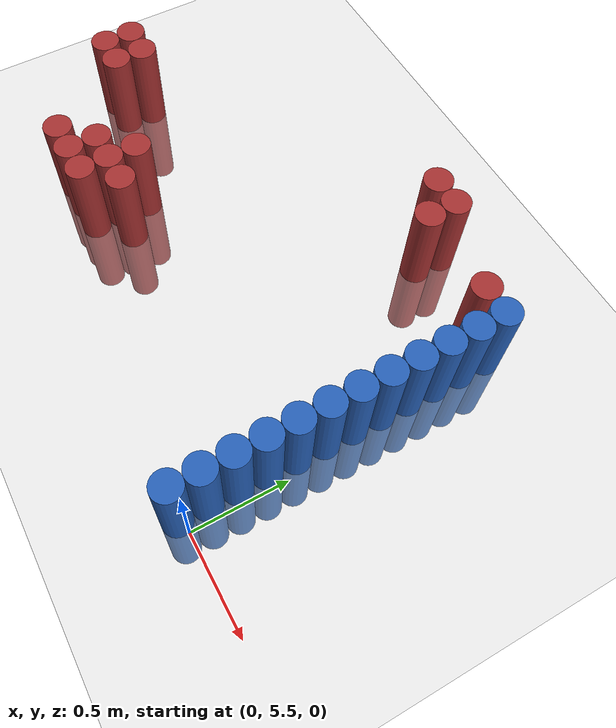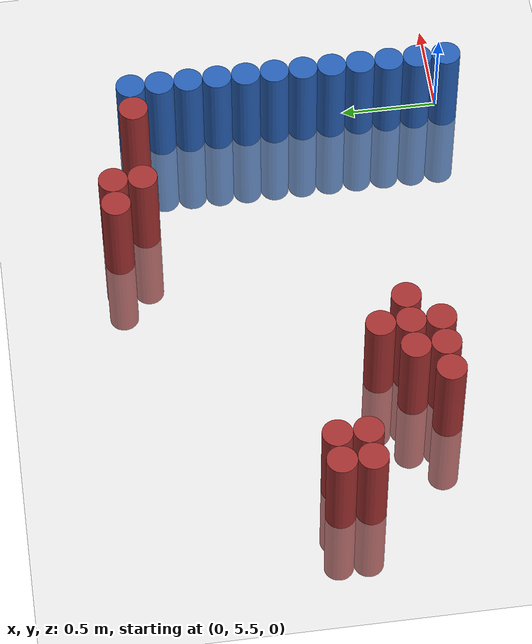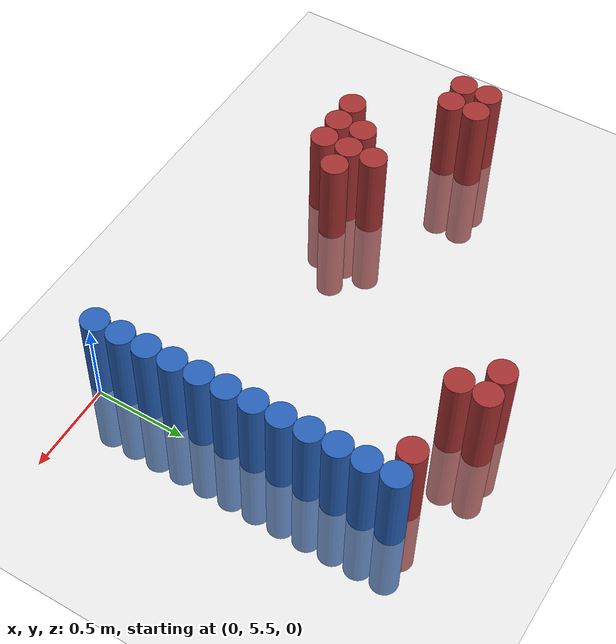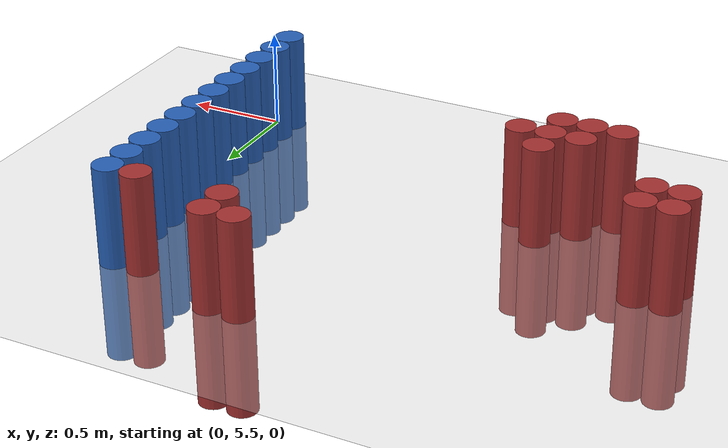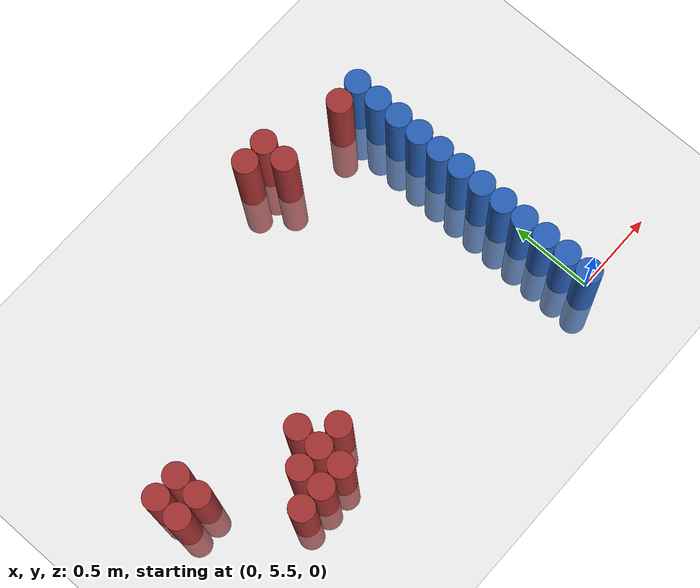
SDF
<sdf version="1.6">
 <world name="default">
  <model name="ground_plane">
   <static>1</static>
   <link name="link">
    <collision name="collision">
     <geometry><plane><normal>0 0 1</normal><size>100 100</size></plane></geometry>
     <surface><friction><ode><mu>100</mu><mu2>50</mu2></ode></friction></surface>
    </collision>
    <visual name="visual">
     <cast_shadows>0</cast_shadows>
     <geometry><plane><normal>0 0 1</normal><size>100 100</size></plane></geometry>
     <material>
      <script><uri>file://media/materials/scripts/gazebo.material</uri><name>Gazebo/Grey</name></script>
     </material>
    </visual>
   </link>
  </model>
  <model name="unit_cylinder_164">
   <static>1</static>
   <pose>-2.475000 6.225000 0.000000 0.000000 0.000000 0.000000</pose>
   <link name="link">
    <inertial>
     <mass>1</mass>
     <inertia><ixx>0.145833</ixx><ixy>0</ixy><ixz>0</ixz><iyy>0.145833</iyy><iyz>0</iyz><izz>0.125</izz></inertia>
    </inertial>
    <collision name="collision">
     <geometry><cylinder><radius>0.075000</radius><length>1</length></cylinder></geometry>
    </collision>
    <visual name="visual">
     <geometry><cylinder><radius>0.075000</radius><length>1</length></cylinder></geometry>
     <material>
      <ambient>0.648000 0.192000 0.192000 1</ambient>
      <diffuse>0.648000 0.192000 0.192000 1</diffuse>
     </material>
     <material>
      <script><name>Gazebo/Grey</name><uri>file://media/materials/scripts/gazebo.material</uri></script>
     </material>
    </visual>
   </link>
  </model>
  <model name="unit_cylinder_165">
   <static>1</static>
   <pose>-2.475000 6.375000 0.000000 0.000000 0.000000 0.000000</pose>
   <link name="link">
    <inertial>
     <mass>1</mass>
     <inertia><ixx>0.145833</ixx><ixy>0</ixy><ixz>0</ixz><iyy>0.145833</iyy><iyz>0</iyz><izz>0.125</izz></inertia>
    </inertial>
    <collision name="collision">
     <geometry><cylinder><radius>0.075000</radius><length>1</length></cylinder></geometry>
    </collision>
    <visual name="visual">
     <geometry><cylinder><radius>0.075000</radius><length>1</length></cylinder></geometry>
     <material>
      <ambient>0.648000 0.192000 0.192000 1</ambient>
      <diffuse>0.648000 0.192000 0.192000 1</diffuse>
     </material>
     <material>
      <script><name>Gazebo/Grey</name><uri>file://media/materials/scripts/gazebo.material</uri></script>
     </material>
    </visual>
   </link>
  </model>
  <model name="unit_cylinder_166">
   <static>1</static>
   <pose>-2.325000 6.225000 0.000000 0.000000 0.000000 0.000000</pose>
   <link name="link">
    <inertial>
     <mass>1</mass>
     <inertia><ixx>0.145833</ixx><ixy>0</ixy><ixz>0</ixz><iyy>0.145833</iyy><iyz>0</iyz><izz>0.125</izz></inertia>
    </inertial>
    <collision name="collision">
     <geometry><cylinder><radius>0.075000</radius><length>1</length></cylinder></geometry>
    </collision>
    <visual name="visual">
     <geometry><cylinder><radius>0.075000</radius><length>1</length></cylinder></geometry>
     <material>
      <ambient>0.648000 0.192000 0.192000 1</ambient>
      <diffuse>0.648000 0.192000 0.192000 1</diffuse>
     </material>
     <material>
      <script><name>Gazebo/Grey</name><uri>file://media/materials/scripts/gazebo.material</uri></script>
     </material>
    </visual>
   </link>
  </model>
  <model name="unit_cylinder_167">
   <static>1</static>
   <pose>-2.325000 6.375000 0.000000 0.000000 0.000000 0.000000</pose>
   <link name="link">
    <inertial>
     <mass>1</mass>
     <inertia><ixx>0.145833</ixx><ixy>0</ixy><ixz>0</ixz><iyy>0.145833</iyy><iyz>0</iyz><izz>0.125</izz></inertia>
    </inertial>
    <collision name="collision">
     <geometry><cylinder><radius>0.075000</radius><length>1</length></cylinder></geometry>
    </collision>
    <visual name="visual">
     <geometry><cylinder><radius>0.075000</radius><length>1</length></cylinder></geometry>
     <material>
      <ambient>0.648000 0.192000 0.192000 1</ambient>
      <diffuse>0.648000 0.192000 0.192000 1</diffuse>
     </material>
     <material>
      <script><name>Gazebo/Grey</name><uri>file://media/materials/scripts/gazebo.material</uri></script>
     </material>
    </visual>
   </link>
  </model>
  <model name="unit_cylinder_172">
   <static>1</static>
   <pose>-2.025000 5.775000 0.000000 0.000000 0.000000 0.000000</pose>
   <link name="link">
    <inertial>
     <mass>1</mass>
     <inertia><ixx>0.145833</ixx><ixy>0</ixy><ixz>0</ixz><iyy>0.145833</iyy><iyz>0</iyz><izz>0.125</izz></inertia>
    </inertial>
    <collision name="collision">
     <geometry><cylinder><radius>0.075000</radius><length>1</length></cylinder></geometry>
    </collision>
    <visual name="visual">
     <geometry><cylinder><radius>0.075000</radius><length>1</length></cylinder></geometry>
     <material>
      <ambient>0.648000 0.192000 0.192000 1</ambient>
      <diffuse>0.648000 0.192000 0.192000 1</diffuse>
     </material>
     <material>
      <script><name>Gazebo/Grey</name><uri>file://media/materials/scripts/gazebo.material</uri></script>
     </material>
    </visual>
   </link>
  </model>
  <model name="unit_cylinder_173">
   <static>1</static>
   <pose>-1.875000 5.775000 0.000000 0.000000 0.000000 0.000000</pose>
   <link name="link">
    <inertial>
     <mass>1</mass>
     <inertia><ixx>0.145833</ixx><ixy>0</ixy><ixz>0</ixz><iyy>0.145833</iyy><iyz>0</iyz><izz>0.125</izz></inertia>
    </inertial>
    <collision name="collision">
     <geometry><cylinder><radius>0.075000</radius><length>1</length></cylinder></geometry>
    </collision>
    <visual name="visual">
     <geometry><cylinder><radius>0.075000</radius><length>1</length></cylinder></geometry>
     <material>
      <ambient>0.648000 0.192000 0.192000 1</ambient>
      <diffuse>0.648000 0.192000 0.192000 1</diffuse>
     </material>
     <material>
      <script><name>Gazebo/Grey</name><uri>file://media/materials/scripts/gazebo.material</uri></script>
     </material>
    </visual>
   </link>
  </model>
  <model name="unit_cylinder_174">
   <static>1</static>
   <pose>-1.875000 5.925000 0.000000 0.000000 0.000000 0.000000</pose>
   <link name="link">
    <inertial>
     <mass>1</mass>
     <inertia><ixx>0.145833</ixx><ixy>0</ixy><ixz>0</ixz><iyy>0.145833</iyy><iyz>0</iyz><izz>0.125</izz></inertia>
    </inertial>
    <collision name="collision">
     <geometry><cylinder><radius>0.075000</radius><length>1</length></cylinder></geometry>
    </collision>
    <visual name="visual">
     <geometry><cylinder><radius>0.075000</radius><length>1</length></cylinder></geometry>
     <material>
      <ambient>0.648000 0.192000 0.192000 1</ambient>
      <diffuse>0.648000 0.192000 0.192000 1</diffuse>
     </material>
     <material>
      <script><name>Gazebo/Grey</name><uri>file://media/materials/scripts/gazebo.material</uri></script>
     </material>
    </visual>
   </link>
  </model>
  <model name="unit_cylinder_175">
   <static>1</static>
   <pose>-1.725000 5.775000 0.000000 0.000000 0.000000 0.000000</pose>
   <link name="link">
    <inertial>
     <mass>1</mass>
     <inertia><ixx>0.145833</ixx><ixy>0</ixy><ixz>0</ixz><iyy>0.145833</iyy><iyz>0</iyz><izz>0.125</izz></inertia>
    </inertial>
    <collision name="collision">
     <geometry><cylinder><radius>0.075000</radius><length>1</length></cylinder></geometry>
    </collision>
    <visual name="visual">
     <geometry><cylinder><radius>0.075000</radius><length>1</length></cylinder></geometry>
     <material>
      <ambient>0.648000 0.192000 0.192000 1</ambient>
      <diffuse>0.648000 0.192000 0.192000 1</diffuse>
     </material>
     <material>
      <script><name>Gazebo/Grey</name><uri>file://media/materials/scripts/gazebo.material</uri></script>
     </material>
    </visual>
   </link>
  </model>
  <model name="unit_cylinder_176">
   <static>1</static>
   <pose>-1.725000 5.925000 0.000000 0.000000 0.000000 0.000000</pose>
   <link name="link">
    <inertial>
     <mass>1</mass>
     <inertia><ixx>0.145833</ixx><ixy>0</ixy><ixz>0</ixz><iyy>0.145833</iyy><iyz>0</iyz><izz>0.125</izz></inertia>
    </inertial>
    <collision name="collision">
     <geometry><cylinder><radius>0.075000</radius><length>1</length></cylinder></geometry>
    </collision>
    <visual name="visual">
     <geometry><cylinder><radius>0.075000</radius><length>1</length></cylinder></geometry>
     <material>
      <ambient>0.648000 0.192000 0.192000 1</ambient>
      <diffuse>0.648000 0.192000 0.192000 1</diffuse>
     </material>
     <material>
      <script><name>Gazebo/Grey</name><uri>file://media/materials/scripts/gazebo.material</uri></script>
     </material>
    </visual>
   </link>
  </model>
  <model name="unit_cylinder_177">
   <static>1</static>
   <pose>-1.725000 6.075000 0.000000 0.000000 0.000000 0.000000</pose>
   <link name="link">
    <inertial>
     <mass>1</mass>
     <inertia><ixx>0.145833</ixx><ixy>0</ixy><ixz>0</ixz><iyy>0.145833</iyy><iyz>0</iyz><izz>0.125</izz></inertia>
    </inertial>
    <collision name="collision">
     <geometry><cylinder><radius>0.075000</radius><length>1</length></cylinder></geometry>
    </collision>
    <visual name="visual">
     <geometry><cylinder><radius>0.075000</radius><length>1</length></cylinder></geometry>
     <material>
      <ambient>0.648000 0.192000 0.192000 1</ambient>
      <diffuse>0.648000 0.192000 0.192000 1</diffuse>
     </material>
     <material>
      <script><name>Gazebo/Grey</name><uri>file://media/materials/scripts/gazebo.material</uri></script>
     </material>
    </visual>
   </link>
  </model>
  <model name="unit_cylinder_178">
   <static>1</static>
   <pose>-1.575000 5.925000 0.000000 0.000000 0.000000 0.000000</pose>
   <link name="link">
    <inertial>
     <mass>1</mass>
     <inertia><ixx>0.145833</ixx><ixy>0</ixy><ixz>0</ixz><iyy>0.145833</iyy><iyz>0</iyz><izz>0.125</izz></inertia>
    </inertial>
    <collision name="collision">
     <geometry><cylinder><radius>0.075000</radius><length>1</length></cylinder></geometry>
    </collision>
    <visual name="visual">
     <geometry><cylinder><radius>0.075000</radius><length>1</length></cylinder></geometry>
     <material>
      <ambient>0.648000 0.192000 0.192000 1</ambient>
      <diffuse>0.648000 0.192000 0.192000 1</diffuse>
     </material>
     <material>
      <script><name>Gazebo/Grey</name><uri>file://media/materials/scripts/gazebo.material</uri></script>
     </material>
    </visual>
   </link>
  </model>
  <model name="unit_cylinder_180">
   <static>1</static>
   <pose>-0.825000 7.275000 0.000000 0.000000 0.000000 0.000000</pose>
   <link name="link">
    <inertial>
     <mass>1</mass>
     <inertia><ixx>0.145833</ixx><ixy>0</ixy><ixz>0</ixz><iyy>0.145833</iyy><iyz>0</iyz><izz>0.125</izz></inertia>
    </inertial>
    <collision name="collision">
     <geometry><cylinder><radius>0.075000</radius><length>1</length></cylinder></geometry>
    </collision>
    <visual name="visual">
     <geometry><cylinder><radius>0.075000</radius><length>1</length></cylinder></geometry>
     <material>
      <ambient>0.648000 0.192000 0.192000 1</ambient>
      <diffuse>0.648000 0.192000 0.192000 1</diffuse>
     </material>
     <material>
      <script><name>Gazebo/Grey</name><uri>file://media/materials/scripts/gazebo.material</uri></script>
     </material>
    </visual>
   </link>
  </model>
  <model name="unit_cylinder_183">
   <static>1</static>
   <pose>-0.675000 7.125000 0.000000 0.000000 0.000000 0.000000</pose>
   <link name="link">
    <inertial>
     <mass>1</mass>
     <inertia><ixx>0.145833</ixx><ixy>0</ixy><ixz>0</ixz><iyy>0.145833</iyy><iyz>0</iyz><izz>0.125</izz></inertia>
    </inertial>
    <collision name="collision">
     <geometry><cylinder><radius>0.075000</radius><length>1</length></cylinder></geometry>
    </collision>
    <visual name="visual">
     <geometry><cylinder><radius>0.075000</radius><length>1</length></cylinder></geometry>
     <material>
      <ambient>0.648000 0.192000 0.192000 1</ambient>
      <diffuse>0.648000 0.192000 0.192000 1</diffuse>
     </material>
     <material>
      <script><name>Gazebo/Grey</name><uri>file://media/materials/scripts/gazebo.material</uri></script>
     </material>
    </visual>
   </link>
  </model>
  <model name="unit_cylinder_184">
   <static>1</static>
   <pose>-0.675000 7.275000 0.000000 0.000000 0.000000 0.000000</pose>
   <link name="link">
    <inertial>
     <mass>1</mass>
     <inertia><ixx>0.145833</ixx><ixy>0</ixy><ixz>0</ixz><iyy>0.145833</iyy><iyz>0</iyz><izz>0.125</izz></inertia>
    </inertial>
    <collision name="collision">
     <geometry><cylinder><radius>0.075000</radius><length>1</length></cylinder></geometry>
    </collision>
    <visual name="visual">
     <geometry><cylinder><radius>0.075000</radius><length>1</length></cylinder></geometry>
     <material>
      <ambient>0.648000 0.192000 0.192000 1</ambient>
      <diffuse>0.648000 0.192000 0.192000 1</diffuse>
     </material>
     <material>
      <script><name>Gazebo/Grey</name><uri>file://media/materials/scripts/gazebo.material</uri></script>
     </material>
    </visual>
   </link>
  </model>
  <model name="unit_cylinder_185">
   <static>1</static>
   <pose>-0.225000 7.125000 0.000000 0.000000 0.000000 0.000000</pose>
   <link name="link">
    <inertial>
     <mass>1</mass>
     <inertia><ixx>0.145833</ixx><ixy>0</ixy><ixz>0</ixz><iyy>0.145833</iyy><iyz>0</iyz><izz>0.125</izz></inertia>
    </inertial>
    <collision name="collision">
     <geometry><cylinder><radius>0.075000</radius><length>1</length></cylinder></geometry>
    </collision>
    <visual name="visual">
     <geometry><cylinder><radius>0.075000</radius><length>1</length></cylinder></geometry>
     <material>
      <ambient>0.648000 0.192000 0.192000 1</ambient>
      <diffuse>0.648000 0.192000 0.192000 1</diffuse>
     </material>
     <material>
      <script><name>Gazebo/Grey</name><uri>file://media/materials/scripts/gazebo.material</uri></script>
     </material>
    </visual>
   </link>
  </model>
  <model name="unit_cylinder_192">
   <static>1</static>
   <pose>-0.075000 5.475000 0.000000 0.000000 0.000000 0.000000</pose>
   <link name="link">
    <inertial>
     <mass>1</mass>
     <inertia><ixx>0.145833</ixx><ixy>0</ixy><ixz>0</ixz><iyy>0.145833</iyy><iyz>0</iyz><izz>0.125</izz></inertia>
    </inertial>
    <collision name="collision">
     <geometry><cylinder><radius>0.075000</radius><length>1</length></cylinder></geometry>
    </collision>
    <visual name="visual">
     <geometry><cylinder><radius>0.075000</radius><length>1</length></cylinder></geometry>
     <material>
      <ambient>0.152000 0.379000 0.720000 1</ambient>
      <diffuse>0.152000 0.379000 0.720000 1</diffuse>
     </material>
     <material>
      <script><name>Gazebo/Grey</name><uri>file://media/materials/scripts/gazebo.material</uri></script>
     </material>
    </visual>
   </link>
  </model>
  <model name="unit_cylinder_193">
   <static>1</static>
   <pose>-0.075000 5.625000 0.000000 0.000000 0.000000 0.000000</pose>
   <link name="link">
    <inertial>
     <mass>1</mass>
     <inertia><ixx>0.145833</ixx><ixy>0</ixy><ixz>0</ixz><iyy>0.145833</iyy><iyz>0</iyz><izz>0.125</izz></inertia>
    </inertial>
    <collision name="collision">
     <geometry><cylinder><radius>0.075000</radius><length>1</length></cylinder></geometry>
    </collision>
    <visual name="visual">
     <geometry><cylinder><radius>0.075000</radius><length>1</length></cylinder></geometry>
     <material>
      <ambient>0.152000 0.379000 0.720000 1</ambient>
      <diffuse>0.152000 0.379000 0.720000 1</diffuse>
     </material>
     <material>
      <script><name>Gazebo/Grey</name><uri>file://media/materials/scripts/gazebo.material</uri></script>
     </material>
    </visual>
   </link>
  </model>
  <model name="unit_cylinder_194">
   <static>1</static>
   <pose>-0.075000 5.775000 0.000000 0.000000 0.000000 0.000000</pose>
   <link name="link">
    <inertial>
     <mass>1</mass>
     <inertia><ixx>0.145833</ixx><ixy>0</ixy><ixz>0</ixz><iyy>0.145833</iyy><iyz>0</iyz><izz>0.125</izz></inertia>
    </inertial>
    <collision name="collision">
     <geometry><cylinder><radius>0.075000</radius><length>1</length></cylinder></geometry>
    </collision>
    <visual name="visual">
     <geometry><cylinder><radius>0.075000</radius><length>1</length></cylinder></geometry>
     <material>
      <ambient>0.152000 0.379000 0.720000 1</ambient>
      <diffuse>0.152000 0.379000 0.720000 1</diffuse>
     </material>
     <material>
      <script><name>Gazebo/Grey</name><uri>file://media/materials/scripts/gazebo.material</uri></script>
     </material>
    </visual>
   </link>
  </model>
  <model name="unit_cylinder_195">
   <static>1</static>
   <pose>-0.075000 5.925000 0.000000 0.000000 0.000000 0.000000</pose>
   <link name="link">
    <inertial>
     <mass>1</mass>
     <inertia><ixx>0.145833</ixx><ixy>0</ixy><ixz>0</ixz><iyy>0.145833</iyy><iyz>0</iyz><izz>0.125</izz></inertia>
    </inertial>
    <collision name="collision">
     <geometry><cylinder><radius>0.075000</radius><length>1</length></cylinder></geometry>
    </collision>
    <visual name="visual">
     <geometry><cylinder><radius>0.075000</radius><length>1</length></cylinder></geometry>
     <material>
      <ambient>0.152000 0.379000 0.720000 1</ambient>
      <diffuse>0.152000 0.379000 0.720000 1</diffuse>
     </material>
     <material>
      <script><name>Gazebo/Grey</name><uri>file://media/materials/scripts/gazebo.material</uri></script>
     </material>
    </visual>
   </link>
  </model>
  <model name="unit_cylinder_196">
   <static>1</static>
   <pose>-0.075000 6.075000 0.000000 0.000000 0.000000 0.000000</pose>
   <link name="link">
    <inertial>
     <mass>1</mass>
     <inertia><ixx>0.145833</ixx><ixy>0</ixy><ixz>0</ixz><iyy>0.145833</iyy><iyz>0</iyz><izz>0.125</izz></inertia>
    </inertial>
    <collision name="collision">
     <geometry><cylinder><radius>0.075000</radius><length>1</length></cylinder></geometry>
    </collision>
    <visual name="visual">
     <geometry><cylinder><radius>0.075000</radius><length>1</length></cylinder></geometry>
     <material>
      <ambient>0.152000 0.379000 0.720000 1</ambient>
      <diffuse>0.152000 0.379000 0.720000 1</diffuse>
     </material>
     <material>
      <script><name>Gazebo/Grey</name><uri>file://media/materials/scripts/gazebo.material</uri></script>
     </material>
    </visual>
   </link>
  </model>
  <model name="unit_cylinder_197">
   <static>1</static>
   <pose>-0.075000 6.225000 0.000000 0.000000 0.000000 0.000000</pose>
   <link name="link">
    <inertial>
     <mass>1</mass>
     <inertia><ixx>0.145833</ixx><ixy>0</ixy><ixz>0</ixz><iyy>0.145833</iyy><iyz>0</iyz><izz>0.125</izz></inertia>
    </inertial>
    <collision name="collision">
     <geometry><cylinder><radius>0.075000</radius><length>1</length></cylinder></geometry>
    </collision>
    <visual name="visual">
     <geometry><cylinder><radius>0.075000</radius><length>1</length></cylinder></geometry>
     <material>
      <ambient>0.152000 0.379000 0.720000 1</ambient>
      <diffuse>0.152000 0.379000 0.720000 1</diffuse>
     </material>
     <material>
      <script><name>Gazebo/Grey</name><uri>file://media/materials/scripts/gazebo.material</uri></script>
     </material>
    </visual>
   </link>
  </model>
  <model name="unit_cylinder_198">
   <static>1</static>
   <pose>-0.075000 6.375000 0.000000 0.000000 0.000000 0.000000</pose>
   <link name="link">
    <inertial>
     <mass>1</mass>
     <inertia><ixx>0.145833</ixx><ixy>0</ixy><ixz>0</ixz><iyy>0.145833</iyy><iyz>0</iyz><izz>0.125</izz></inertia>
    </inertial>
    <collision name="collision">
     <geometry><cylinder><radius>0.075000</radius><length>1</length></cylinder></geometry>
    </collision>
    <visual name="visual">
     <geometry><cylinder><radius>0.075000</radius><length>1</length></cylinder></geometry>
     <material>
      <ambient>0.152000 0.379000 0.720000 1</ambient>
      <diffuse>0.152000 0.379000 0.720000 1</diffuse>
     </material>
     <material>
      <script><name>Gazebo/Grey</name><uri>file://media/materials/scripts/gazebo.material</uri></script>
     </material>
    </visual>
   </link>
  </model>
  <model name="unit_cylinder_199">
   <static>1</static>
   <pose>-0.075000 6.525000 0.000000 0.000000 0.000000 0.000000</pose>
   <link name="link">
    <inertial>
     <mass>1</mass>
     <inertia><ixx>0.145833</ixx><ixy>0</ixy><ixz>0</ixz><iyy>0.145833</iyy><iyz>0</iyz><izz>0.125</izz></inertia>
    </inertial>
    <collision name="collision">
     <geometry><cylinder><radius>0.075000</radius><length>1</length></cylinder></geometry>
    </collision>
    <visual name="visual">
     <geometry><cylinder><radius>0.075000</radius><length>1</length></cylinder></geometry>
     <material>
      <ambient>0.152000 0.379000 0.720000 1</ambient>
      <diffuse>0.152000 0.379000 0.720000 1</diffuse>
     </material>
     <material>
      <script><name>Gazebo/Grey</name><uri>file://media/materials/scripts/gazebo.material</uri></script>
     </material>
    </visual>
   </link>
  </model>
  <model name="unit_cylinder_200">
   <static>1</static>
   <pose>-0.075000 6.675000 0.000000 0.000000 0.000000 0.000000</pose>
   <link name="link">
    <inertial>
     <mass>1</mass>
     <inertia><ixx>0.145833</ixx><ixy>0</ixy><ixz>0</ixz><iyy>0.145833</iyy><iyz>0</iyz><izz>0.125</izz></inertia>
    </inertial>
    <collision name="collision">
     <geometry><cylinder><radius>0.075000</radius><length>1</length></cylinder></geometry>
    </collision>
    <visual name="visual">
     <geometry><cylinder><radius>0.075000</radius><length>1</length></cylinder></geometry>
     <material>
      <ambient>0.152000 0.379000 0.720000 1</ambient>
      <diffuse>0.152000 0.379000 0.720000 1</diffuse>
     </material>
     <material>
      <script><name>Gazebo/Grey</name><uri>file://media/materials/scripts/gazebo.material</uri></script>
     </material>
    </visual>
   </link>
  </model>
  <model name="unit_cylinder_201">
   <static>1</static>
   <pose>-0.075000 6.825000 0.000000 0.000000 0.000000 0.000000</pose>
   <link name="link">
    <inertial>
     <mass>1</mass>
     <inertia><ixx>0.145833</ixx><ixy>0</ixy><ixz>0</ixz><iyy>0.145833</iyy><iyz>0</iyz><izz>0.125</izz></inertia>
    </inertial>
    <collision name="collision">
     <geometry><cylinder><radius>0.075000</radius><length>1</length></cylinder></geometry>
    </collision>
    <visual name="visual">
     <geometry><cylinder><radius>0.075000</radius><length>1</length></cylinder></geometry>
     <material>
      <ambient>0.152000 0.379000 0.720000 1</ambient>
      <diffuse>0.152000 0.379000 0.720000 1</diffuse>
     </material>
     <material>
      <script><name>Gazebo/Grey</name><uri>file://media/materials/scripts/gazebo.material</uri></script>
     </material>
    </visual>
   </link>
  </model>
  <model name="unit_cylinder_202">
   <static>1</static>
   <pose>-0.075000 6.975000 0.000000 0.000000 0.000000 0.000000</pose>
   <link name="link">
    <inertial>
     <mass>1</mass>
     <inertia><ixx>0.145833</ixx><ixy>0</ixy><ixz>0</ixz><iyy>0.145833</iyy><iyz>0</iyz><izz>0.125</izz></inertia>
    </inertial>
    <collision name="collision">
     <geometry><cylinder><radius>0.075000</radius><length>1</length></cylinder></geometry>
    </collision>
    <visual name="visual">
     <geometry><cylinder><radius>0.075000</radius><length>1</length></cylinder></geometry>
     <material>
      <ambient>0.152000 0.379000 0.720000 1</ambient>
      <diffuse>0.152000 0.379000 0.720000 1</diffuse>
     </material>
     <material>
      <script><name>Gazebo/Grey</name><uri>file://media/materials/scripts/gazebo.material</uri></script>
     </material>
    </visual>
   </link>
  </model>
  <model name="unit_cylinder_203">
   <static>1</static>
   <pose>-0.075000 7.125000 0.000000 0.000000 0.000000 0.000000</pose>
   <link name="link">
    <inertial>
     <mass>1</mass>
     <inertia><ixx>0.145833</ixx><ixy>0</ixy><ixz>0</ixz><iyy>0.145833</iyy><iyz>0</iyz><izz>0.125</izz></inertia>
    </inertial>
    <collision name="collision">
     <geometry><cylinder><radius>0.075000</radius><length>1</length></cylinder></geometry>
    </collision>
    <visual name="visual">
     <geometry><cylinder><radius>0.075000</radius><length>1</length></cylinder></geometry>
     <material>
      <ambient>0.152000 0.379000 0.720000 1</ambient>
      <diffuse>0.152000 0.379000 0.720000 1</diffuse>
     </material>
     <material>
      <script><name>Gazebo/Grey</name><uri>file://media/materials/scripts/gazebo.material</uri></script>
     </material>
    </visual>
   </link>
  </model>
 </world>
</sdf>
